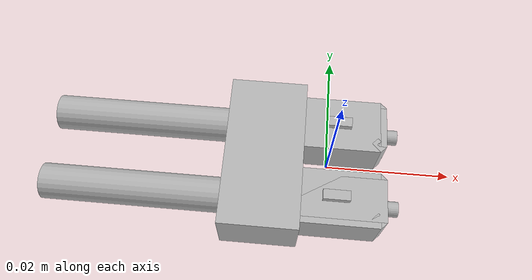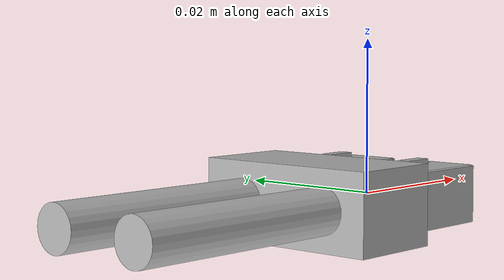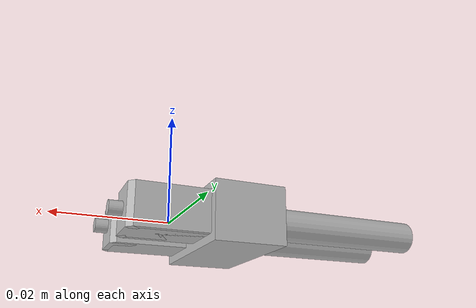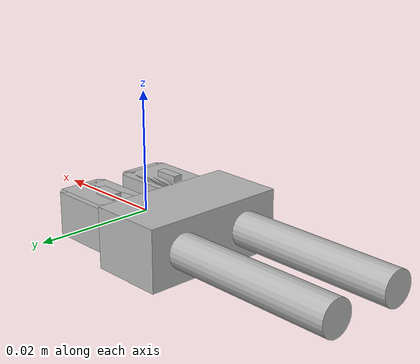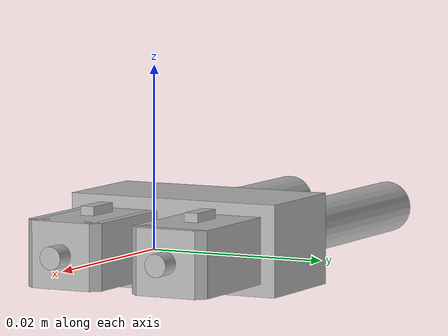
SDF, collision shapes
<?xml version="1.0" ?>
<sdf version="1.9">
  <model name="SC Plug">
    <link name="sc_plug_link">
      <inertial auto="true">
        <mass>0.04</mass>
      </inertial>
      <visual name="sc_plug_visual">
        <geometry>
          <mesh>
            <uri>sc_plug_visual.glb</uri>
          </mesh>
        </geometry>
      </visual>
      <collision name="housing blue_predeterminado005_collider_box">
        <pose>0.002038 0.006344 4e-06 0.0 0.0 0.0</pose>
        <geometry>
          <box>
            <size>0.012721 0.009 0.0073</size>
          </box>
        </geometry>
      </collision>
      <collision name="housing blue_predeterminado005_collider_box.001">
        <pose>0.002038 -0.006344 4e-06 0.0 0.0 0.0</pose>
        <geometry>
          <box>
            <size>0.012721 0.009 0.0073</size>
          </box>
        </geometry>
      </collision>
      <collision name="housing blue_predeterminado005_collider_box.002">
        <pose>0.002539 0.006344 4e-06 0.0 0.0 0.0</pose>
        <geometry>
          <box>
            <size>0.013722 0.007 0.0073</size>
          </box>
        </geometry>
      </collision>
      <collision name="housing blue_predeterminado005_collider_box.003">
        <pose>0.002539 -0.006344 4e-06 0.0 0.0 0.0</pose>
        <geometry>
          <box>
            <size>0.013722 0.007 0.0073</size>
          </box>
        </geometry>
      </collision>
      <collision name="housing blue_predeterminado005_collider_box.004">
        <pose>0.008191 0.003056 4e-06 0.0 -0.0 -0.785398</pose>
        <geometry>
          <box>
            <size>0.002 0.00141 0.0073</size>
          </box>
        </geometry>
      </collision>
      <collision name="housing blue_predeterminado005_collider_box.005">
        <pose>0.008191 0.009636 4e-06 0.0 -0.0 0.785398</pose>
        <geometry>
          <box>
            <size>0.002 0.00141 0.0073</size>
          </box>
        </geometry>
      </collision>
      <collision name="housing blue_predeterminado005_collider_box.006">
        <pose>0.008191 -0.009636 4e-06 0.0 -0.0 -0.785398</pose>
        <geometry>
          <box>
            <size>0.002 0.00141 0.0073</size>
          </box>
        </geometry>
      </collision>
      <collision name="housing blue_predeterminado005_collider_box.007">
        <pose>0.008191 -0.003056 4e-06 0.0 -0.0 0.785398</pose>
        <geometry>
          <box>
            <size>0.002 0.00141 0.0073</size>
          </box>
        </geometry>
      </collision>
      <collision name="cube002_collider_box">
        <pose>-0.010291 0.0 0.0 0.0 0.0 0.0</pose>
        <geometry>
          <box>
            <size>0.01255 0.025 0.0101</size>
          </box>
        </geometry>
      </collision>
      <collision name="cylinder011_collider_cylinder">
        <pose>-0.031147 -0.00635 -0.0 -0.0 1.570796 0.0</pose>
        <geometry>
          <cylinder>
            <radius>0.0029</radius>
            <length>0.02921</length>
          </cylinder>
        </geometry>
      </collision>
      <collision name="cylinder005_collider_cylinder">
        <pose>-0.029953 0.00635 -0.0 -0.0 1.570796 0.0</pose>
        <geometry>
          <cylinder>
            <radius>0.0029</radius>
            <length>0.031598</length>
          </cylinder>
        </geometry>
      </collision>
      <collision name="ferula_predeterminado005_collider_cylinder">
        <pose>0.00465 -0.00635 0.0 -0.0 1.570796 0.0</pose>
        <geometry>
          <cylinder>
            <radius>0.00125</radius>
            <length>0.014</length>
          </cylinder>
        </geometry>
      </collision>
      <collision name="ferula_predeterminado003_collider_cylinder">
        <pose>0.00465 0.00635 0.0 -0.0 1.570796 0.0</pose>
        <geometry>
          <cylinder>
            <radius>0.00125</radius>
            <length>0.014</length>
          </cylinder>
        </geometry>
      </collision>
      <collision name="side_box_collision">
        <pose>0.00146 -0.00632 0.0042 0.0 0.0 0.0</pose>
        <geometry>
          <box>
            <size>0.00425 0.00162 0.001</size>
          </box>
        </geometry>
      </collision>
      <collision name="side_box_collision_2">
        <pose>0.00146 0.00632 0.0042 0.0 0.0 0.0</pose>
        <geometry>
          <box>
            <size>0.00425 0.00162 0.001</size>
          </box>
        </geometry>
      </collision>
    </link>

    <link name="sc_tip_link">
      <pose>0.01165 0 0 -1.5708 0 -1.5708</pose>
      <inertial>
        <mass>1e-3</mass>
        <inertia>
          <ixx>1e-6</ixx>
          <iyy>1e-6</iyy>
          <izz>1e-6</izz>
        </inertia>
      </inertial>
    </link>

    <joint name="sc_tip_joint" type="fixed">
      <parent>sc_plug_link</parent>
      <child>sc_tip_link</child>
    </joint>

  </model>
</sdf>
